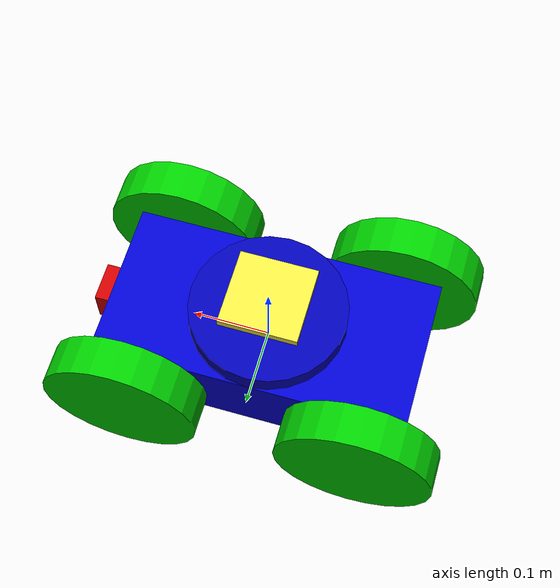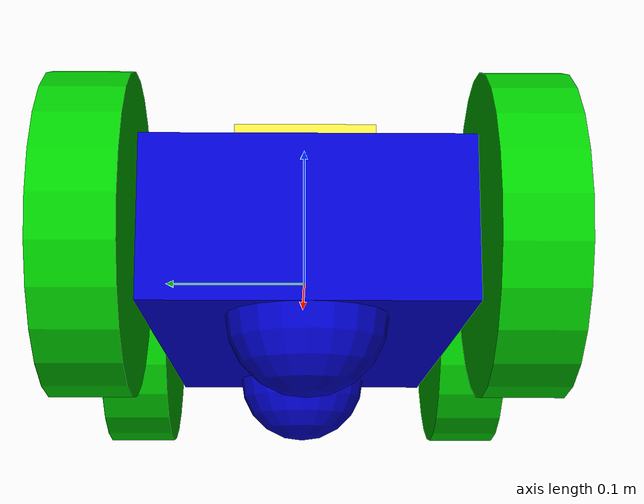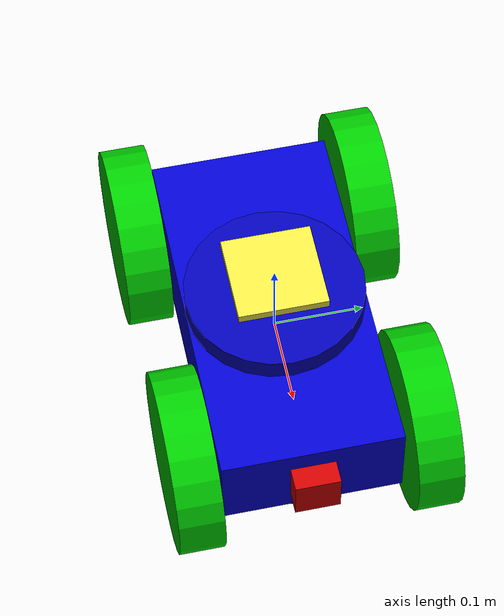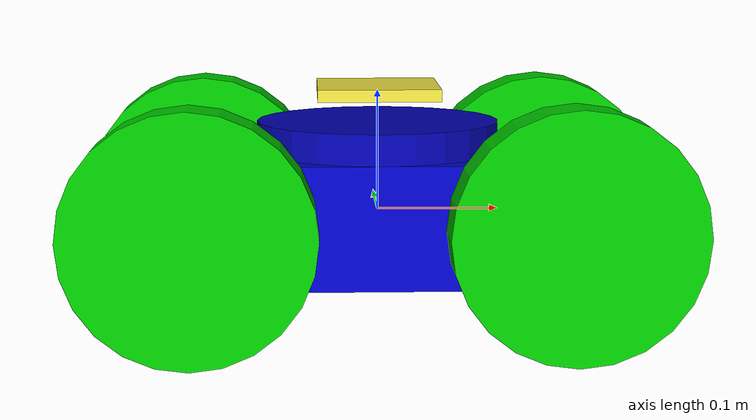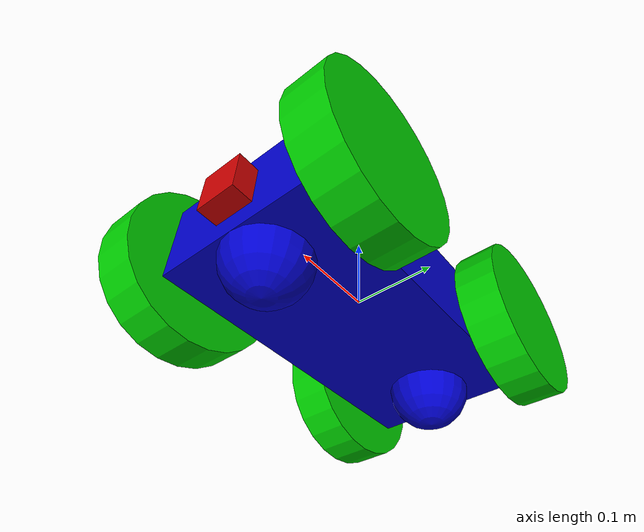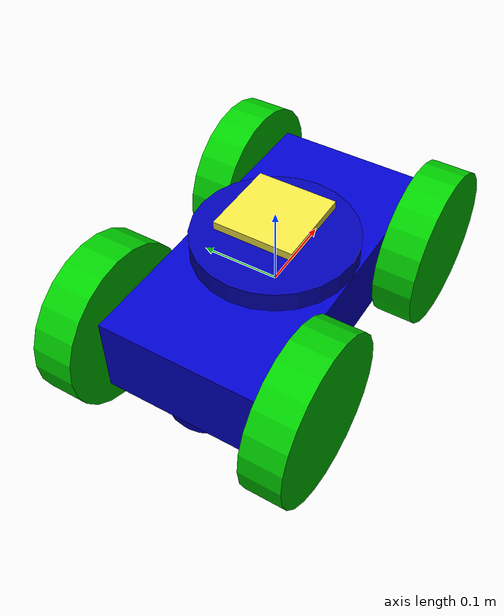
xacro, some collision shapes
<?xml version='1.0'?>

<robot name="my_robot" xmlns:xacro="http://www.ros.org/wiki/xacro">
<xacro:include filename="$(find my_robot)/urdf/my_robot.gazebo" />
  <link name="robot_footprint"></link>
  <link name='chassis'>
   <pose>0 0 0.1 0 0 0</pose>
   <inertial>
      <mass value="15.0"/>
      <origin xyz="0.0 0 0" rpy=" 0 0 0"/>
      <inertia
          ixx="0.1" ixy="0" ixz="0"
          iyy="0.1" iyz="0"
          izz="0.1"
      />
    </inertial>
    <collision name='collision'>
      <origin xyz="0 0 0" rpy=" 0 0 0"/>
      <geometry>
        <box size=".4 .2 .1"/>
      </geometry>
    </collision>

    <collision name='back_caster_collision'>
      <origin xyz="-0.15 0 -0.05" rpy=" 0 0 0"/>
      <geometry>
        <sphere radius="0.0499"/>
      </geometry>
    </collision>

    <visual name='back_caster_visual'>
      <origin xyz="-0.15 0 -0.05" rpy=" 0 0 0"/>
      <geometry>
        <sphere radius="0.05"/>
      </geometry>
      <material name="">
         <color rgba="0.0 0.0 0.8 1.0"/>
      </material>
    </visual>

    <collision name='front_caster_collision'>
      <origin xyz="0.15 0 -0.05" rpy=" 0 0 0"/>
      <geometry>
        <sphere radius="0.0499"/>
      </geometry>
    </collision>

    <visual name='front_caster_visual'>
      <origin xyz="0.15 0 -0.05" rpy=" 0 0 0"/>
      <geometry>
        <sphere radius="0.05"/>
      </geometry>
      <material name="">
         <color rgba="0.0 0.0 0.8 1.0"/>
      </material>
    </visual>
    <visual name='chassis_visual'>
      <origin xyz="0 0 0" rpy=" 0 0 0"/>
      <geometry>
        <box size=".4 .2 .1"/>
      </geometry>
      <material name="">
         <color rgba="0.0 0.0 0.8 1.0"/>
      </material>
    </visual>
  </link>
  <gazebo reference="chassis">
   <material>Gazebo/Blue</material>
  </gazebo>
  <link name='camera'>
   <visual name='camera_visual'>
      <origin xyz="0 0 0" rpy=" 0 0 0"/>
      <geometry>
        <box size='0.05 0.05 0.05'/>
      </geometry>
      <material name="">
         <color rgba="0.8 0.0 0.0 1.0"/>
      </material>
    </visual>
    <inertial>
      <mass value="5.0"/>
      <origin xyz="0.05 0.05 0.05" rpy=" 0 0 0"/>
      <inertia
          ixx="1e-6" ixy="0" ixz="0"
          iyy="1e-6" iyz="0"
          izz="1e-6"
      />
    </inertial>
    <collision name='camera_collision'>
      <origin xyz="0 0 0" rpy=" 0 0 0"/>
      <geometry>
        <box size='0.05 0.05 0.05'/>
      </geometry>
    </collision>
  </link>
  <link name='hokuyo'>
   <visual name='hokuyo_visual'>
      <origin xyz="0 0 0" rpy=" 0 0 0"/>
      <geometry>
        <mesh filename="package://my_robot/meshes/hokuyo.dae"/>
      </geometry>
    </visual>
    <inertial>
      <mass value="1e-5"/>
      <origin xyz="0 0 0" rpy=" 0 0 0"/>
      <inertia
          ixx="1e-6" ixy="0" ixz="0"
          iyy="1e-6" iyz="0"
          izz="1e-6"
      />
    </inertial>
    <collision name='hokuyo_collision'>
      <origin xyz="0 0 0" rpy=" 0 0 0"/>
      <geometry>
        <box size='0.1 0.1 0.01'/>
      </geometry>
    </collision>
  </link>
  <link name='right_wheel_front'>
   <visual name='right_wheel_front_visual'>
      <origin xyz="0 0 0" rpy=" 0 1.5707 1.5707"/>
      <geometry>
        <cylinder radius="0.1" length='0.05'/>
      </geometry>
      <material name="">
         <color rgba="0.0 0.8 0.0 1.0"/>
      </material>
    </visual>
    <inertial>
      <mass value="5.0"/>
      <origin xyz="0 0 0" rpy=" 0 1.5707 1.5707"/>
      <inertia
          ixx="0.1" ixy="0" ixz="0"
          iyy="0.1" iyz="0"
          izz="0.1"
      />
    </inertial>
    <collision name='right_wheel_front_collision'>
      <origin xyz="0 0 0" rpy=" 0 1.5707 1.5707"/>
      <geometry>
        <cylinder radius="0.1" length='0.05'/>
      </geometry>
    </collision>
  </link>
  <gazebo reference="right_wheel_front">
   <material>Gazebo/Green</material>
  </gazebo>
  <link name='left_wheel_front'>
   <visual name='left_wheel_front_visual'>
      <origin xyz="0 0 0" rpy=" 0 1.5707 1.5707"/>
      <geometry>
        <cylinder radius="0.1" length='0.05'/>
      </geometry>
      <material name="">
         <color rgba="0.0 0.8 0.0 1.0"/>
      </material>
    </visual>
    <inertial>
      <mass value="5.0"/>
      <origin xyz="0 0 0" rpy=" 0 1.5707 1.5707"/>
      <inertia
          ixx="0.1" ixy="0" ixz="0"
          iyy="0.1" iyz="0"
          izz="0.1"
      />
    </inertial>
    <collision name='left_wheel_front_collision'>
      <origin xyz="0 0 0" rpy=" 0 1.5707 1.5707"/>
      <geometry>
        <cylinder radius="0.1" length='0.05'/>
      </geometry>
    </collision>
  </link>
  <gazebo reference="left_wheel_front">
   <material>Gazebo/Green</material>
  </gazebo>
  <link name='right_wheel_back'>
   <visual name='right_wheel_back_visual'>
      <origin xyz="0 0 0" rpy=" 0 1.5707 1.5707"/>
      <geometry>
        <cylinder radius="0.1" length='0.05'/>
      </geometry>
      <material name="">
         <color rgba="0.0 0.8 0.0 1.0"/>
      </material>
    </visual>
    <inertial>
      <mass value="5.0"/>
      <origin xyz="0 0 0" rpy=" 0 1.5707 1.5707"/>
      <inertia
          ixx="0.1" ixy="0" ixz="0"
          iyy="0.1" iyz="0"
          izz="0.1"
      />
    </inertial>
    <collision name='right_wheel_back_collision'>
      <origin xyz="0 0 0" rpy=" 0 1.5707 1.5707"/>
      <geometry>
        <cylinder radius="0.1" length='0.05'/>
      </geometry>
    </collision>
  </link>
  <gazebo reference="right_wheel_back">
   <material>Gazebo/Green</material>
  </gazebo>
  <link name='left_wheel_back'>
   <visual name='left_wheel_back_visual'>
      <origin xyz="0 0 0" rpy=" 0 1.5707 1.5707"/>
      <geometry>
        <cylinder radius="0.1" length='0.05'/>
      </geometry>
      <material name="">
         <color rgba="0.0 0.8 0.0 1.0"/>
      </material>
    </visual>
    <inertial>
      <mass value="5.0"/>
      <origin xyz="0 0 0" rpy=" 0 1.5707 1.5707"/>
      <inertia
          ixx="0.1" ixy="0" ixz="0"
          iyy="0.1" iyz="0"
          izz="0.1"
      />
    </inertial>
    <collision name='left_wheel_back_collision'>
      <origin xyz="0 0 0" rpy=" 0 1.5707 1.5707"/>
      <geometry>
        <cylinder radius="0.1" length='0.05'/>
      </geometry>
    </collision>
  </link>
  <gazebo reference="left_wheel_back">
   <material>Gazebo/Green</material>
  </gazebo>
  <link name='lidar_head'>
   <visual name='lidar_head_visual'>
      <origin xyz="0 0 0" rpy=" 0 0 0"/>
      <geometry>
        <cylinder radius="0.1" length='0.05'/>
      </geometry>
      <material name="">
         <color rgba="0.0 0.0 0.7 1.0"/>
      </material>
    </visual>
    <inertial>
      <mass value="5.0"/>
      <origin xyz="0 0 0" rpy=" 0 0 0"/>
      <inertia
          ixx="0.1" ixy="0" ixz="0"
          iyy="0.1" iyz="0"
          izz="0.1"
      />
    </inertial>
    <collision name='lidar_head_collision'>
      <origin xyz="0 0 0" rpy=" 0 0 0"/>
      <geometry>
        <cylinder radius="0.05" length='0.1'/>
      </geometry>
    </collision>
  </link>
  <gazebo reference="lidar_head">
   <material>Gazebo/Cyan</material>
  </gazebo>
  <joint name="robot_footprint_joint" type="fixed">
    <origin xyz="0 0 0" rpy="0 0 0" />
    <parent link="robot_footprint"/>
    <child link="chassis" />
  </joint>
  <joint name="camera_joint" type="fixed">
    <origin xyz="0.2 0 0" rpy="0 0 0" />
    <parent link="chassis"/>
    <child link="camera" />
    <axis xyz="0 1 0" rpy="0 0 0"/>
  </joint>
  <joint name="hokuyo_joint" type="fixed">
    <origin xyz="0 0 0.05" rpy="0 0 0" />
    <parent link="lidar_head"/>
    <child link="hokuyo" />
    <axis xyz="0 0 1" rpy="0 0 0"/>
  </joint>
  <joint name="lidar_head_joint" type="fixed">
    <origin xyz="0 0 0.05" rpy="0 0 0" />
    <parent link="chassis"/>
    <child link="lidar_head" />
    <axis xyz="0 0 1" rpy="0 0 0"/>
  </joint>
  <joint type="continuous" name="left_wheel_hinge">
   <origin xyz="0.15 0.13 0" rpy="0 0 0"/>
     <child link="left_wheel_front"/>
     <parent link="chassis"/>
     <axis xyz="0 1 0" rpy="0 0 0"/>
     <limit effort="10000" velocity="1000"/>
     <dynamics damping="1.0" friction="1.0"/>
   </joint>
   <joint type="continuous" name="right_wheel_hinge">
     <origin xyz="0.15 -0.13 0" rpy="0 0 0"/>
     <child link="right_wheel_front"/>
     <parent link="chassis"/>
     <axis xyz="0 1 0" rpy="0 0 0"/>
     <limit effort="10000" velocity="1000"/>
     <dynamics damping="1.0" friction="1.0"/>
   </joint>
   <joint type="continuous" name="left_wheel_hinge_back">
     <origin xyz="-0.15 0.13 0" rpy="0 0 0"/>
     <child link="left_wheel_back"/>
     <parent link="chassis"/>
     <axis xyz="0 1 0" rpy="0 0 0"/>
   </joint>
   <joint type="continuous" name="right_wheel_hinge_back">
     <origin xyz="-0.15 -0.13 0" rpy="0 0 0"/>
     <child link="right_wheel_back"/>
     <parent link="chassis"/>
     <axis xyz="0 1 0" rpy="0 0 0"/>
   </joint>
</robot>
